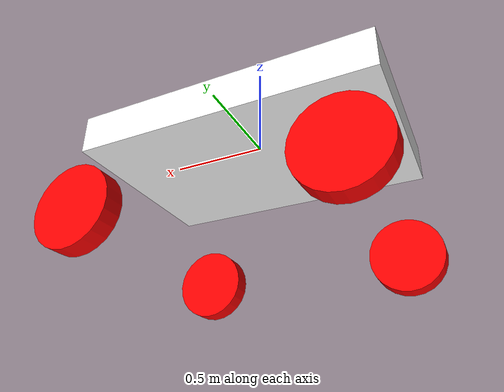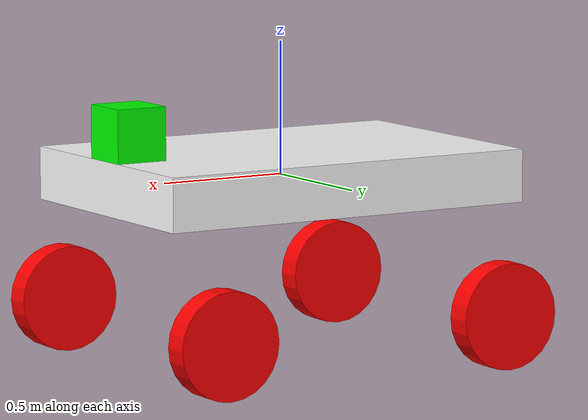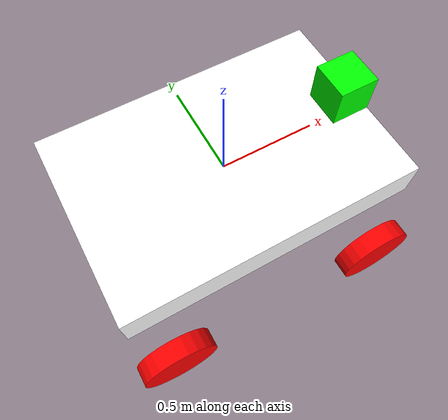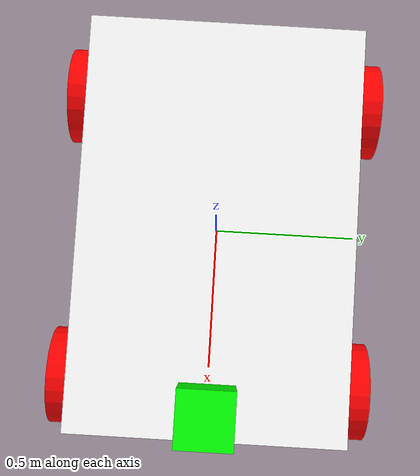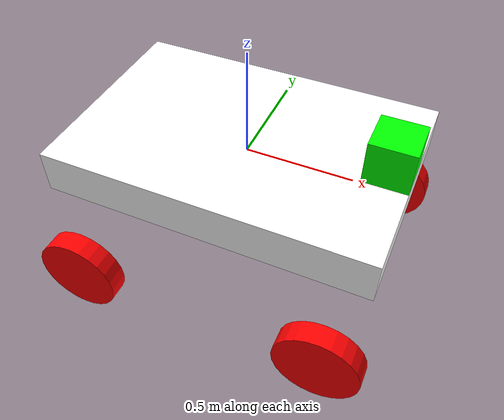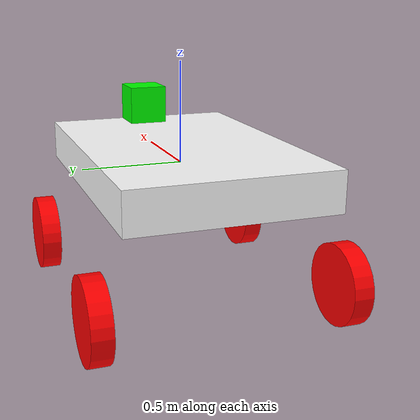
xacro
<?xml version="1.0"?>

<robot name="veerbhadra" xmlns:xacro="http://www.ros.org/wiki/xacro" xmlns:sensor="http://playerstage.sourceforge.net/gazebo/xmlschema/#sensor" xmlns:controller="http://playerstage.sourceforge.net/gazebo/xmlschema/#controller" xmlns:interface="http://playerstage.sourceforge.net/gazebo/xmlschema/#interface">

<xacro:property name="base_length" value="1.5"/>
<xacro:property name="base_width" value="1.0"/>
<xacro:property name="base_height" value="0.2"/>
<xacro:property name="head_height" value="0.2"/>
<xacro:property name="wheel_radius" value="0.2"/>
<xacro:property name="wheel_width" value="0.1"/>
<xacro:property name="imu_length" value="0.1"/>
<xacro:property name="front_cam_radius" value="0.1"/>
<xacro:property name="front_cam_length" value="0.1"/>
<xacro:property name="bottom_cam_radius" value="0.1"/>
<xacro:property name="bottom_cam_length" value="0.1"/>
<!-- The Frame and its Joint with the World -->
    <link name="base">
        <visual>
            <origin xyz="0 0 0"/>
            <geometry>
                <box size="${base_length} ${base_width} ${base_height}"/>
            </geometry>
            <material name="white">
                <color rgba="1 1 1 1"/>
            </material>
        </visual>
        <collision>
            <origin xyz="0 0 0"/>
            <geometry>
                <box size="${base_length} ${base_width} ${base_height}"/>
            </geometry>
        </collision>
        <inertial>
            <origin xyz="0 0 0"/>
            <mass value="1.0"/>
            <inertia ixx="1.0" ixy="0.0" ixz="0.0" iyy="1.0" iyz="0.0" izz="1.0"/>
        </inertial>
    </link>
    <gazebo reference="base">
        <material>Gazebo/White</material>
    </gazebo>

<!-- The Head and its Joint with the Frame -->

    <link name="head">
        <visual>
            <origin xyz="0 0 ${head_height/2}"/>
            <geometry>
                <box size="${head_height} ${head_height} ${head_height}"/>
            </geometry>
            <material name="green">
                <color rgba="0 1 0 1"/>
            </material>
        </visual>
        <collision>
            <origin xyz="0 0 ${head_height/2}"/>
            <geometry>
                <box size="${head_height} ${head_height} ${head_height}"/>
            </geometry>
        </collision>
        <inertial>
            <origin xyz="0 0 ${head_height/2}"/>
            <mass value="1.0"/>
            <inertia ixx="1.0" ixy="0.0" ixz="0.0" iyy="1.0" iyz="0.0" izz="1.0"/>
        </inertial>
    </link>

    <joint name="head_joint" type="fixed">
        <origin xyz="${(base_length-head_height)/2} 0 ${base_height/2}"/>
        <parent link="base"/>
        <child link="head"/>
    </joint>

    <gazebo reference="head">
        <material>Gazebo/Green</material>
    </gazebo>

<!-- The Wheel macro -->

    <xacro:macro name="wheel" params="x_reflect y_reflect radius width wheel_name">
        <link name="${wheel_name}_link">
            <visual>
                <origin xyz="0 0 0" rpy="1.57075 0 0"/>
                <geometry>
                    <cylinder radius="${radius}" length="${width}"/>
                </geometry>
                <material name="red">
                    <color rgba="1 0 0 1"/>
                </material>
            </visual>
            <collision>
                <origin xyz="0 0 0" rpy="1.57075 0 0"/>
                <geometry>
                    <cylinder radius="${radius}" length="${width}"/>
                </geometry>
            </collision>
            <inertial>
                <mass value="1.0"/>
                <inertia ixx="1.0" ixy="0.0" ixz="0.0" iyy="1.0" iyz="0.0" izz="1.0"/>
            </inertial>
        </link>
        <gazebo reference="${wheel_name}_link">
            <material>Gazebo/Red</material>
            <mu1 value="1.0"/>
            <mu2 value="1.0"/>
        </gazebo>
        <joint name="${wheel_name}_joint" type="continuous">
            <axis xyz="0 1 0"/>
            <origin xyz="${x_reflect*4*base_length/10} ${y_reflect*6*base_width/10} -${5*wheel_radius/2}"/>
            <parent link="base"/>
            <child link="${wheel_name}_link"/>
        </joint>
    </xacro:macro>

<!-- use the Wheel xacro to create the wheels -->
    <xacro:wheel wheel_name="lf" radius="${wheel_radius}" width="${wheel_width}" x_reflect="1" y_reflect="1"/>
    <xacro:wheel wheel_name="lb" radius="${wheel_radius}" width="${wheel_width}" x_reflect="-1" y_reflect="1"/>
    <xacro:wheel wheel_name="rf" radius="${wheel_radius}" width="${wheel_width}" x_reflect="1" y_reflect="-1"/>
    <xacro:wheel wheel_name="rb" radius="${wheel_radius}" width="${wheel_width}" x_reflect="-1" y_reflect="-1"/>

    <gazebo>
        <controller:diffdrive_plugin name="differential_drive_controller" plugin="libdiffdrive_plugin.so">
            <alwaysOn>true</alwaysOn>
            <update>100</update>
            <updateRate>100.0</updateRate>
            <leftJoint>lb_joint</leftJoint>
            <rightJoint>rb_joint</rightJoint>
            <wheelSeparation>${0.6*base_width}</wheelSeparation>
            <wheelDiameter>${2*wheel_radius}</wheelDiameter>
            <torque>5</torque>
            <interface:position name="auv"/>
            <topicName>cmd_vel</topicName>
        </controller:diffdrive_plugin>

    </gazebo>

</robot>
